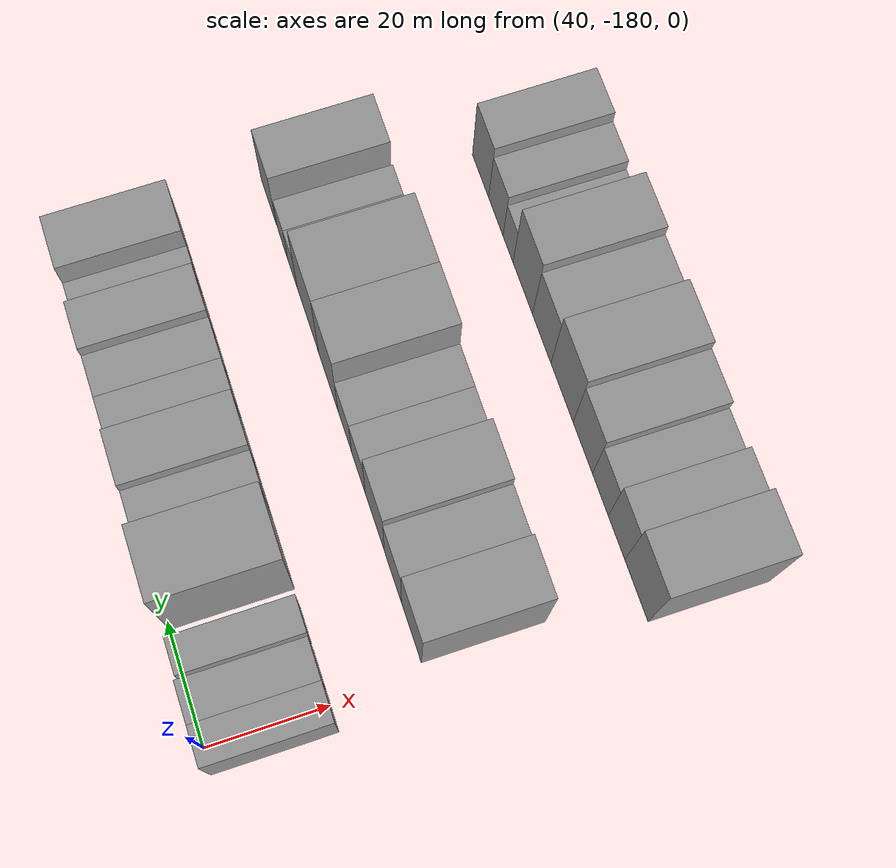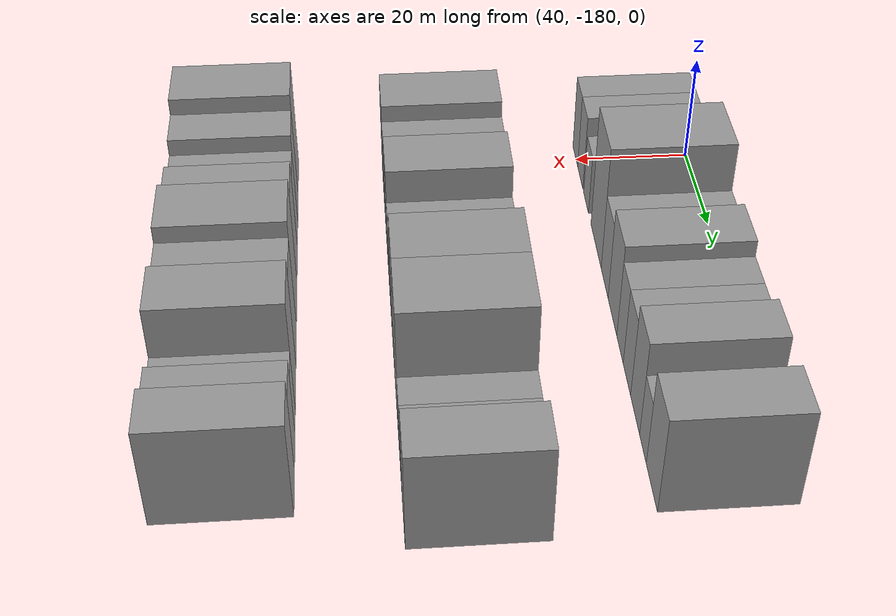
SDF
<sdf version="1.6">
 <world name="default">
  <model name="building_21">
   <static>1</static>
   <pose>50.0000 -181.0161 0 0.000000 0.000000 0.000000</pose>
   <link name="link">
    <pose>0 0 7.50 0 0 0</pose>
    <collision name="collision"><geometry><box><size>20.0000 6.3071 15.0000</size></box></geometry></collision>
    <visual name="visual">
     <cast_shadows>0</cast_shadows>
     <geometry><box><size>20.0000 6.3071 15.0000</size></box></geometry>
     <material>
      <script>
       <uri>model://grey_wall/materials/scripts</uri>
       <uri>model://grey_wall/materials/textures</uri>
       <name>vrc/grey_wall</name>
      </script>
     </material>
    </visual>
   </link>
  </model>
  <model name="building_22">
   <static>1</static>
   <pose>50.0000 -174.5558 0 0.000000 0.000000 0.000000</pose>
   <link name="link">
    <pose>0 0 7.50 0 0 0</pose>
    <collision name="collision"><geometry><box><size>20.0000 6.6134 15.0000</size></box></geometry></collision>
    <visual name="visual">
     <cast_shadows>0</cast_shadows>
     <geometry><box><size>20.0000 6.6134 15.0000</size></box></geometry>
     <material>
      <script>
       <uri>model://grey_wall/materials/scripts</uri>
       <uri>model://grey_wall/materials/textures</uri>
       <name>vrc/grey_wall</name>
      </script>
     </material>
    </visual>
   </link>
  </model>
  <model name="building_23">
   <static>1</static>
   <pose>50.0000 -167.2927 0 0.000000 0.000000 0.000000</pose>
   <link name="link">
    <pose>0 0 6.00 0 0 0</pose>
    <collision name="collision"><geometry><box><size>20.0000 5.9128 12.0000</size></box></geometry></collision>
    <visual name="visual">
     <cast_shadows>0</cast_shadows>
     <geometry><box><size>20.0000 5.9128 12.0000</size></box></geometry>
     <material>
      <script>
       <uri>model://grey_wall/materials/scripts</uri>
       <uri>model://grey_wall/materials/textures</uri>
       <name>vrc/grey_wall</name>
      </script>
     </material>
    </visual>
   </link>
  </model>
  <model name="building_24">
   <static>1</static>
   <pose>50.0000 -155.4569 0 0.000000 0.000000 0.000000</pose>
   <link name="link">
    <pose>0 0 12.00 0 0 0</pose>
    <collision name="collision"><geometry><box><size>20.0000 11.7588 24.0000</size></box></geometry></collision>
    <visual name="visual">
     <cast_shadows>0</cast_shadows>
     <geometry><box><size>20.0000 11.7588 24.0000</size></box></geometry>
     <material>
      <script>
       <uri>model://grey_wall/materials/scripts</uri>
       <uri>model://grey_wall/materials/textures</uri>
       <name>vrc/grey_wall</name>
      </script>
     </material>
    </visual>
   </link>
  </model>
  <model name="building_25">
   <static>1</static>
   <pose>50.0000 -145.8737 0 0.000000 0.000000 0.000000</pose>
   <link name="link">
    <pose>0 0 7.50 0 0 0</pose>
    <collision name="collision"><geometry><box><size>20.0000 7.4076 15.0000</size></box></geometry></collision>
    <visual name="visual">
     <cast_shadows>0</cast_shadows>
     <geometry><box><size>20.0000 7.4076 15.0000</size></box></geometry>
     <material>
      <script>
       <uri>model://grey_wall/materials/scripts</uri>
       <uri>model://grey_wall/materials/textures</uri>
       <name>vrc/grey_wall</name>
      </script>
     </material>
    </visual>
   </link>
  </model>
  <model name="building_26">
   <static>1</static>
   <pose>50.0000 -137.6836 0 0.000000 0.000000 0.000000</pose>
   <link name="link">
    <pose>0 0 9.00 0 0 0</pose>
    <collision name="collision"><geometry><box><size>20.0000 8.9725 18.0000</size></box></geometry></collision>
    <visual name="visual">
     <cast_shadows>0</cast_shadows>
     <geometry><box><size>20.0000 8.9725 18.0000</size></box></geometry>
     <material>
      <script>
       <uri>model://grey_wall/materials/scripts</uri>
       <uri>model://grey_wall/materials/textures</uri>
       <name>vrc/grey_wall</name>
      </script>
     </material>
    </visual>
   </link>
  </model>
  <model name="building_27">
   <static>1</static>
   <pose>50.0000 -130.0861 0 0.000000 0.000000 0.000000</pose>
   <link name="link">
    <pose>0 0 7.50 0 0 0</pose>
    <collision name="collision"><geometry><box><size>20.0000 6.2227 15.0000</size></box></geometry></collision>
    <visual name="visual">
     <cast_shadows>0</cast_shadows>
     <geometry><box><size>20.0000 6.2227 15.0000</size></box></geometry>
     <material>
      <script>
       <uri>model://grey_wall/materials/scripts</uri>
       <uri>model://grey_wall/materials/textures</uri>
       <name>vrc/grey_wall</name>
      </script>
     </material>
    </visual>
   </link>
  </model>
  <model name="building_28">
   <static>1</static>
   <pose>50.0000 -123.5246 0 0.000000 0.000000 0.000000</pose>
   <link name="link">
    <pose>0 0 7.50 0 0 0</pose>
    <collision name="collision"><geometry><box><size>20.0000 6.9003 15.0000</size></box></geometry></collision>
    <visual name="visual">
     <cast_shadows>0</cast_shadows>
     <geometry><box><size>20.0000 6.9003 15.0000</size></box></geometry>
     <material>
      <script>
       <uri>model://grey_wall/materials/scripts</uri>
       <uri>model://grey_wall/materials/textures</uri>
       <name>vrc/grey_wall</name>
      </script>
     </material>
    </visual>
   </link>
  </model>
  <model name="building_29">
   <static>1</static>
   <pose>50.0000 -116.0841 0 0.000000 0.000000 0.000000</pose>
   <link name="link">
    <pose>0 0 9.00 0 0 0</pose>
    <collision name="collision"><geometry><box><size>20.0000 7.9808 18.0000</size></box></geometry></collision>
    <visual name="visual">
     <cast_shadows>0</cast_shadows>
     <geometry><box><size>20.0000 7.9808 18.0000</size></box></geometry>
     <material>
      <script>
       <uri>model://grey_wall/materials/scripts</uri>
       <uri>model://grey_wall/materials/textures</uri>
       <name>vrc/grey_wall</name>
      </script>
     </material>
    </visual>
   </link>
  </model>
  <model name="building_30">
   <static>1</static>
   <pose>50.0000 -109.2844 0 0.000000 0.000000 0.000000</pose>
   <link name="link">
    <pose>0 0 6.00 0 0 0</pose>
    <collision name="collision"><geometry><box><size>20.0000 5.6186 12.0000</size></box></geometry></collision>
    <visual name="visual">
     <cast_shadows>0</cast_shadows>
     <geometry><box><size>20.0000 5.6186 12.0000</size></box></geometry>
     <material>
      <script>
       <uri>model://grey_wall/materials/scripts</uri>
       <uri>model://grey_wall/materials/textures</uri>
       <name>vrc/grey_wall</name>
      </script>
     </material>
    </visual>
   </link>
  </model>
  <model name="building_31">
   <static>1</static>
   <pose>50.0000 -101.9850 0 0.000000 0.000000 0.000000</pose>
   <link name="link">
    <pose>0 0 9.00 0 0 0</pose>
    <collision name="collision"><geometry><box><size>20.0000 8.9801 18.0000</size></box></geometry></collision>
    <visual name="visual">
     <cast_shadows>0</cast_shadows>
     <geometry><box><size>20.0000 8.9801 18.0000</size></box></geometry>
     <material>
      <script>
       <uri>model://grey_wall/materials/scripts</uri>
       <uri>model://grey_wall/materials/textures</uri>
       <name>vrc/grey_wall</name>
      </script>
     </material>
    </visual>
   </link>
  </model>
  <model name="building_105">
   <static>1</static>
   <pose>85.0000 -173.3195 0 0.000000 0.000000 0.000000</pose>
   <link name="link">
    <pose>0 0 10.50 0 0 0</pose>
    <collision name="collision"><geometry><box><size>20.0000 9.7576 21.0000</size></box></geometry></collision>
    <visual name="visual">
     <cast_shadows>0</cast_shadows>
     <geometry><box><size>20.0000 9.7576 21.0000</size></box></geometry>
     <material>
      <script>
       <uri>model://grey_wall/materials/scripts</uri>
       <uri>model://grey_wall/materials/textures</uri>
       <name>vrc/grey_wall</name>
      </script>
     </material>
    </visual>
   </link>
  </model>
  <model name="building_106">
   <static>1</static>
   <pose>85.0000 -164.2021 0 0.000000 0.000000 0.000000</pose>
   <link name="link">
    <pose>0 0 9.00 0 0 0</pose>
    <collision name="collision"><geometry><box><size>20.0000 8.4773 18.0000</size></box></geometry></collision>
    <visual name="visual">
     <cast_shadows>0</cast_shadows>
     <geometry><box><size>20.0000 8.4773 18.0000</size></box></geometry>
     <material>
      <script>
       <uri>model://grey_wall/materials/scripts</uri>
       <uri>model://grey_wall/materials/textures</uri>
       <name>vrc/grey_wall</name>
      </script>
     </material>
    </visual>
   </link>
  </model>
  <model name="building_107">
   <static>1</static>
   <pose>85.0000 -155.1907 0 0.000000 0.000000 0.000000</pose>
   <link name="link">
    <pose>0 0 10.50 0 0 0</pose>
    <collision name="collision"><geometry><box><size>20.0000 9.5456 21.0000</size></box></geometry></collision>
    <visual name="visual">
     <cast_shadows>0</cast_shadows>
     <geometry><box><size>20.0000 9.5456 21.0000</size></box></geometry>
     <material>
      <script>
       <uri>model://grey_wall/materials/scripts</uri>
       <uri>model://grey_wall/materials/textures</uri>
       <name>vrc/grey_wall</name>
      </script>
     </material>
    </visual>
   </link>
  </model>
  <model name="building_108">
   <static>1</static>
   <pose>85.0000 -146.8540 0 0.000000 0.000000 0.000000</pose>
   <link name="link">
    <pose>0 0 7.50 0 0 0</pose>
    <collision name="collision"><geometry><box><size>20.0000 7.1278 15.0000</size></box></geometry></collision>
    <visual name="visual">
     <cast_shadows>0</cast_shadows>
     <geometry><box><size>20.0000 7.1278 15.0000</size></box></geometry>
     <material>
      <script>
       <uri>model://grey_wall/materials/scripts</uri>
       <uri>model://grey_wall/materials/textures</uri>
       <name>vrc/grey_wall</name>
      </script>
     </material>
    </visual>
   </link>
  </model>
  <model name="building_109">
   <static>1</static>
   <pose>85.0000 -139.7473 0 0.000000 0.000000 0.000000</pose>
   <link name="link">
    <pose>0 0 7.50 0 0 0</pose>
    <collision name="collision"><geometry><box><size>20.0000 7.0855 15.0000</size></box></geometry></collision>
    <visual name="visual">
     <cast_shadows>0</cast_shadows>
     <geometry><box><size>20.0000 7.0855 15.0000</size></box></geometry>
     <material>
      <script>
       <uri>model://grey_wall/materials/scripts</uri>
       <uri>model://grey_wall/materials/textures</uri>
       <name>vrc/grey_wall</name>
      </script>
     </material>
    </visual>
   </link>
  </model>
  <model name="building_110">
   <static>1</static>
   <pose>85.0000 -131.0935 0 0.000000 0.000000 0.000000</pose>
   <link name="link">
    <pose>0 0 12.00 0 0 0</pose>
    <collision name="collision"><geometry><box><size>20.0000 10.2220 24.0000</size></box></geometry></collision>
    <visual name="visual">
     <cast_shadows>0</cast_shadows>
     <geometry><box><size>20.0000 10.2220 24.0000</size></box></geometry>
     <material>
      <script>
       <uri>model://grey_wall/materials/scripts</uri>
       <uri>model://grey_wall/materials/textures</uri>
       <name>vrc/grey_wall</name>
      </script>
     </material>
    </visual>
   </link>
  </model>
  <model name="building_111">
   <static>1</static>
   <pose>85.0000 -120.1341 0 0.000000 0.000000 0.000000</pose>
   <link name="link">
    <pose>0 0 12.00 0 0 0</pose>
    <collision name="collision"><geometry><box><size>20.0000 11.6970 24.0000</size></box></geometry></collision>
    <visual name="visual">
     <cast_shadows>0</cast_shadows>
     <geometry><box><size>20.0000 11.6970 24.0000</size></box></geometry>
     <material>
      <script>
       <uri>model://grey_wall/materials/scripts</uri>
       <uri>model://grey_wall/materials/textures</uri>
       <name>vrc/grey_wall</name>
      </script>
     </material>
    </visual>
   </link>
  </model>
  <model name="building_112">
   <static>1</static>
   <pose>85.0000 -111.5449 0 0.000000 0.000000 0.000000</pose>
   <link name="link">
    <pose>0 0 6.00 0 0 0</pose>
    <collision name="collision"><geometry><box><size>20.0000 5.4813 12.0000</size></box></geometry></collision>
    <visual name="visual">
     <cast_shadows>0</cast_shadows>
     <geometry><box><size>20.0000 5.4813 12.0000</size></box></geometry>
     <material>
      <script>
       <uri>model://grey_wall/materials/scripts</uri>
       <uri>model://grey_wall/materials/textures</uri>
       <name>vrc/grey_wall</name>
      </script>
     </material>
    </visual>
   </link>
  </model>
  <model name="building_113">
   <static>1</static>
   <pose>85.0000 -106.0709 0 0.000000 0.000000 0.000000</pose>
   <link name="link">
    <pose>0 0 6.00 0 0 0</pose>
    <collision name="collision"><geometry><box><size>20.0000 5.4667 12.0000</size></box></geometry></collision>
    <visual name="visual">
     <cast_shadows>0</cast_shadows>
     <geometry><box><size>20.0000 5.4667 12.0000</size></box></geometry>
     <material>
      <script>
       <uri>model://grey_wall/materials/scripts</uri>
       <uri>model://grey_wall/materials/textures</uri>
       <name>vrc/grey_wall</name>
      </script>
     </material>
    </visual>
   </link>
  </model>
  <model name="building_114">
   <static>1</static>
   <pose>85.0000 -97.9520 0 0.000000 0.000000 0.000000</pose>
   <link name="link">
    <pose>0 0 9.00 0 0 0</pose>
    <collision name="collision"><geometry><box><size>20.0000 8.7711 18.0000</size></box></geometry></collision>
    <visual name="visual">
     <cast_shadows>0</cast_shadows>
     <geometry><box><size>20.0000 8.7711 18.0000</size></box></geometry>
     <material>
      <script>
       <uri>model://grey_wall/materials/scripts</uri>
       <uri>model://grey_wall/materials/textures</uri>
       <name>vrc/grey_wall</name>
      </script>
     </material>
    </visual>
   </link>
  </model>
  <model name="building_186">
   <static>1</static>
   <pose>120.0000 -178.0588 0 0.000000 0.000000 0.000000</pose>
   <link name="link">
    <pose>0 0 10.50 0 0 0</pose>
    <collision name="collision"><geometry><box><size>20.0000 10.1929 21.0000</size></box></geometry></collision>
    <visual name="visual">
     <cast_shadows>0</cast_shadows>
     <geometry><box><size>20.0000 10.1929 21.0000</size></box></geometry>
     <material>
      <script>
       <uri>model://grey_wall/materials/scripts</uri>
       <uri>model://grey_wall/materials/textures</uri>
       <name>vrc/grey_wall</name>
      </script>
     </material>
    </visual>
   </link>
  </model>
  <model name="building_187">
   <static>1</static>
   <pose>120.0000 -169.2877 0 0.000000 0.000000 0.000000</pose>
   <link name="link">
    <pose>0 0 9.00 0 0 0</pose>
    <collision name="collision"><geometry><box><size>20.0000 7.3493 18.0000</size></box></geometry></collision>
    <visual name="visual">
     <cast_shadows>0</cast_shadows>
     <geometry><box><size>20.0000 7.3493 18.0000</size></box></geometry>
     <material>
      <script>
       <uri>model://grey_wall/materials/scripts</uri>
       <uri>model://grey_wall/materials/textures</uri>
       <name>vrc/grey_wall</name>
      </script>
     </material>
    </visual>
   </link>
  </model>
  <model name="building_188">
   <static>1</static>
   <pose>120.0000 -162.0311 0 0.000000 0.000000 0.000000</pose>
   <link name="link">
    <pose>0 0 7.50 0 0 0</pose>
    <collision name="collision"><geometry><box><size>20.0000 7.1641 15.0000</size></box></geometry></collision>
    <visual name="visual">
     <cast_shadows>0</cast_shadows>
     <geometry><box><size>20.0000 7.1641 15.0000</size></box></geometry>
     <material>
      <script>
       <uri>model://grey_wall/materials/scripts</uri>
       <uri>model://grey_wall/materials/textures</uri>
       <name>vrc/grey_wall</name>
      </script>
     </material>
    </visual>
   </link>
  </model>
  <model name="building_189">
   <static>1</static>
   <pose>120.0000 -154.0308 0 0.000000 0.000000 0.000000</pose>
   <link name="link">
    <pose>0 0 9.00 0 0 0</pose>
    <collision name="collision"><geometry><box><size>20.0000 8.8364 18.0000</size></box></geometry></collision>
    <visual name="visual">
     <cast_shadows>0</cast_shadows>
     <geometry><box><size>20.0000 8.8364 18.0000</size></box></geometry>
     <material>
      <script>
       <uri>model://grey_wall/materials/scripts</uri>
       <uri>model://grey_wall/materials/textures</uri>
       <name>vrc/grey_wall</name>
      </script>
     </material>
    </visual>
   </link>
  </model>
  <model name="building_190">
   <static>1</static>
   <pose>120.0000 -144.3987 0 0.000000 0.000000 0.000000</pose>
   <link name="link">
    <pose>0 0 10.50 0 0 0</pose>
    <collision name="collision"><geometry><box><size>20.0000 10.4277 21.0000</size></box></geometry></collision>
    <visual name="visual">
     <cast_shadows>0</cast_shadows>
     <geometry><box><size>20.0000 10.4277 21.0000</size></box></geometry>
     <material>
      <script>
       <uri>model://grey_wall/materials/scripts</uri>
       <uri>model://grey_wall/materials/textures</uri>
       <name>vrc/grey_wall</name>
      </script>
     </material>
    </visual>
   </link>
  </model>
  <model name="building_191">
   <static>1</static>
   <pose>120.0000 -134.7394 0 0.000000 0.000000 0.000000</pose>
   <link name="link">
    <pose>0 0 9.00 0 0 0</pose>
    <collision name="collision"><geometry><box><size>20.0000 8.8908 18.0000</size></box></geometry></collision>
    <visual name="visual">
     <cast_shadows>0</cast_shadows>
     <geometry><box><size>20.0000 8.8908 18.0000</size></box></geometry>
     <material>
      <script>
       <uri>model://grey_wall/materials/scripts</uri>
       <uri>model://grey_wall/materials/textures</uri>
       <name>vrc/grey_wall</name>
      </script>
     </material>
    </visual>
   </link>
  </model>
  <model name="building_192">
   <static>1</static>
   <pose>120.0000 -125.5331 0 0.000000 0.000000 0.000000</pose>
   <link name="link">
    <pose>0 0 10.50 0 0 0</pose>
    <collision name="collision"><geometry><box><size>20.0000 9.5219 21.0000</size></box></geometry></collision>
    <visual name="visual">
     <cast_shadows>0</cast_shadows>
     <geometry><box><size>20.0000 9.5219 21.0000</size></box></geometry>
     <material>
      <script>
       <uri>model://grey_wall/materials/scripts</uri>
       <uri>model://grey_wall/materials/textures</uri>
       <name>vrc/grey_wall</name>
      </script>
     </material>
    </visual>
   </link>
  </model>
  <model name="building_193">
   <static>1</static>
   <pose>120.0000 -118.2791 0 0.000000 0.000000 0.000000</pose>
   <link name="link">
    <pose>0 0 6.00 0 0 0</pose>
    <collision name="collision"><geometry><box><size>20.0000 4.9862 12.0000</size></box></geometry></collision>
    <visual name="visual">
     <cast_shadows>0</cast_shadows>
     <geometry><box><size>20.0000 4.9862 12.0000</size></box></geometry>
     <material>
      <script>
       <uri>model://grey_wall/materials/scripts</uri>
       <uri>model://grey_wall/materials/textures</uri>
       <name>vrc/grey_wall</name>
      </script>
     </material>
    </visual>
   </link>
  </model>
  <model name="building_194">
   <static>1</static>
   <pose>120.0000 -112.1756 0 0.000000 0.000000 0.000000</pose>
   <link name="link">
    <pose>0 0 7.50 0 0 0</pose>
    <collision name="collision"><geometry><box><size>20.0000 7.2207 15.0000</size></box></geometry></collision>
    <visual name="visual">
     <cast_shadows>0</cast_shadows>
     <geometry><box><size>20.0000 7.2207 15.0000</size></box></geometry>
     <material>
      <script>
       <uri>model://grey_wall/materials/scripts</uri>
       <uri>model://grey_wall/materials/textures</uri>
       <name>vrc/grey_wall</name>
      </script>
     </material>
    </visual>
   </link>
  </model>
  <model name="building_195">
   <static>1</static>
   <pose>120.0000 -104.4290 0 0.000000 0.000000 0.000000</pose>
   <link name="link">
    <pose>0 0 9.00 0 0 0</pose>
    <collision name="collision"><geometry><box><size>20.0000 8.2723 18.0000</size></box></geometry></collision>
    <visual name="visual">
     <cast_shadows>0</cast_shadows>
     <geometry><box><size>20.0000 8.2723 18.0000</size></box></geometry>
     <material>
      <script>
       <uri>model://grey_wall/materials/scripts</uri>
       <uri>model://grey_wall/materials/textures</uri>
       <name>vrc/grey_wall</name>
      </script>
     </material>
    </visual>
   </link>
  </model>
 </world>
</sdf>
